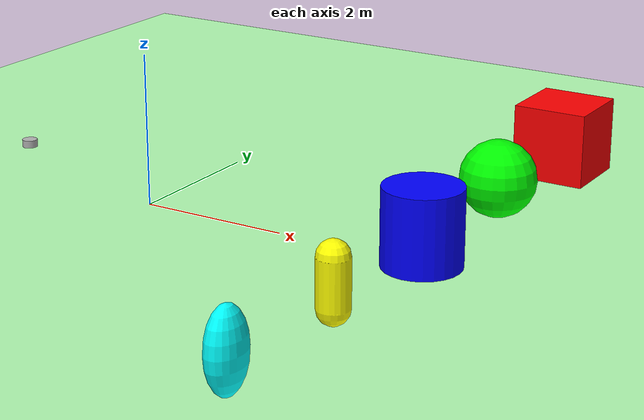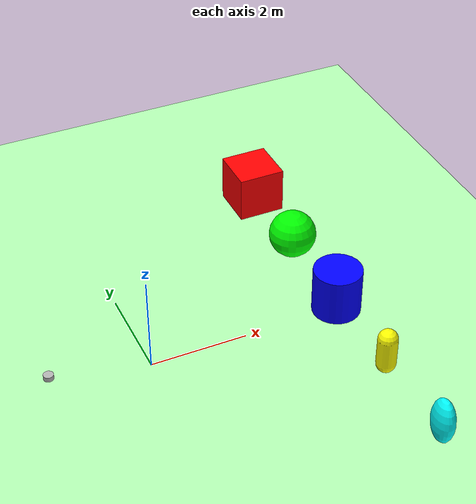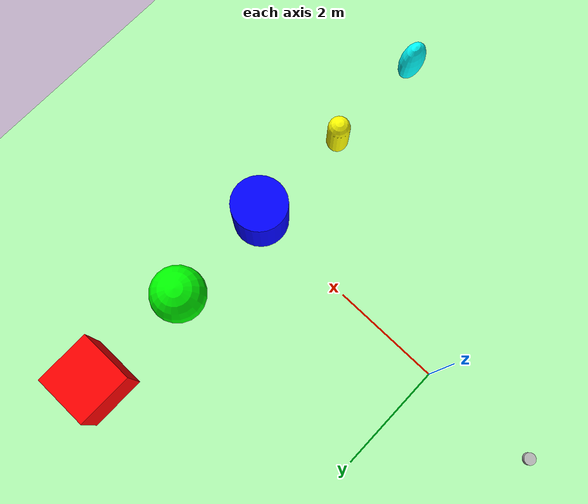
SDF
<sdf version="1.9">
 <world name="rgl_playground">
  <plugin name="rgl::RGLServerPluginManager" filename="RGLServerPluginManager">
   <do_ignore_entities_in_lidar_link>true</do_ignore_entities_in_lidar_link>
  </plugin>
  <physics name="1ms" type="ignored">
   <max_step_size>0.001</max_step_size>
   <real_time_factor>1</real_time_factor>
   <real_time_update_rate>1000</real_time_update_rate>
  </physics>
  <plugin name="gz::sim::systems::Physics" filename="ignition-gazebo-physics-system"/>
  <plugin name="gz::sim::systems::UserCommands" filename="ignition-gazebo-user-commands-system"/>
  <plugin name="gz::sim::systems::SceneBroadcaster" filename="ignition-gazebo-scene-broadcaster-system"/>
  <plugin name="gz::sim::systems::Contact" filename="ignition-gazebo-contact-system"/>
  <gravity>0 0 -9.8</gravity>
  <magnetic_field>6e-06 2.3e-05 -4.2e-05</magnetic_field>
  <atmosphere type="adiabatic"/>
  <scene><ambient>0.4 0.4 0.4 1</ambient><background>0.7 0.7 0.7 1</background><shadows>true</shadows></scene>
  <model name="ground_plane">
   <static>true</static>
   <link name="link">
    <collision name="collision">
     <geometry><plane><normal>0 0 1</normal><size>100 100</size></plane></geometry>
    </collision>
    <visual name="visual">
     <geometry><plane><normal>0 0 1</normal><size>100 100</size></plane></geometry>
     <material>
      <ambient>0.8 0.8 0.8 1</ambient>
      <diffuse>0.7 0.99 0.7 1</diffuse>
      <specular>0.8 0.8 0.8 1</specular>
     </material>
    </visual>
    <inertial>
     <mass>1</mass>
     <inertia><ixx>1</ixx><ixy>0</ixy><ixz>0</ixz><iyy>1</iyy><iyz>0</iyz><izz>1</izz></inertia>
    </inertial>
   </link>
  </model>
  <model name="RGLLidar">
   <pose>-2 0 0.5 0 -0 0</pose>
   <link name="lidar_link">
    <sensor name="RGLsensor" type="custom">
     <plugin filename="RGLServerPluginInstance" name="rgl::RGLServerPluginInstance">
      <range><min>0</min><max>100</max></range>
      <update_rate>10</update_rate>
      <update_on_paused_sim>false</update_on_paused_sim>
      <topic>rgl_lidar</topic>
      <frame>RGLLidar</frame>
      <pattern_preset>Alpha Prime</pattern_preset>
     </plugin>
    </sensor>
    <inertial>
     <inertia>
      <ixx>0.14580000000000001</ixx>
      <ixy>0</ixy>
      <ixz>0</ixz>
      <iyy>0.14580000000000001</iyy>
      <iyz>0</iyz>
      <izz>0.125</izz>
     </inertia>
     <mass>1</mass>
    </inertial>
    <collision name="lidar_collision">
     <geometry><cylinder><radius>0.1</radius><length>0.1</length></cylinder></geometry>
    </collision>
    <visual name="lidar_visual">
     <geometry><cylinder><radius>0.1</radius><length>0.1</length></cylinder></geometry>
     <material>
      <ambient>0.3 0.3 0.3 1</ambient>
      <diffuse>0.7 0.7 0.7 1</diffuse>
      <specular>1 1 1 1</specular>
     </material>
    </visual>
   </link>
   <static>true</static>
  </model>
  <model name="box">
   <pose>4 4 0.5 0 -0 0</pose>
   <link name="box_link">
    <inertial>
     <inertia><ixx>0.16666</ixx><ixy>0</ixy><ixz>0</ixz><iyy>0.16666</iyy><iyz>0</iyz><izz>0.16666</izz></inertia>
     <mass>1</mass>
    </inertial>
    <collision name="box_collision"><geometry><box><size>1 1 1</size></box></geometry></collision>
    <visual name="box_visual">
     <laser_retro>1</laser_retro>
     <geometry><box><size>1 1 1</size></box></geometry>
     <material><ambient>0.3 0.3 0.3 1</ambient><diffuse>1 0 0 1</diffuse><specular>1 1 1 1</specular></material>
    </visual>
   </link>
   <static>false</static>
  </model>
  <model name="sphere">
   <pose>4 2 0.5 0 -0 0</pose>
   <link name="sphere_link">
    <inertial>
     <inertia>
      <ixx>0.10000000000000001</ixx>
      <ixy>0</ixy>
      <ixz>0</ixz>
      <iyy>0.10000000000000001</iyy>
      <iyz>0</iyz>
      <izz>0.10000000000000001</izz>
     </inertia>
     <mass>1</mass>
    </inertial>
    <collision name="sphere_collision"><geometry><sphere><radius>0.5</radius></sphere></geometry></collision>
    <visual name="sphere_visual">
     <laser_retro>2</laser_retro>
     <geometry><sphere><radius>0.5</radius></sphere></geometry>
     <material><ambient>0.3 0.3 0.3 1</ambient><diffuse>0 1 0 1</diffuse><specular>1 1 1 1</specular></material>
    </visual>
   </link>
   <static>false</static>
  </model>
  <model name="cylinder">
   <pose>4 0 0.5 0 -0 0</pose>
   <link name="cylinder_link">
    <inertial>
     <inertia>
      <ixx>0.14580000000000001</ixx>
      <ixy>0</ixy>
      <ixz>0</ixz>
      <iyy>0.14580000000000001</iyy>
      <iyz>0</iyz>
      <izz>0.125</izz>
     </inertia>
     <mass>1</mass>
    </inertial>
    <collision name="cylinder_collision">
     <geometry><cylinder><radius>0.5</radius><length>1</length></cylinder></geometry>
    </collision>
    <visual name="cylinder_visual">
     <laser_retro>3</laser_retro>
     <geometry><cylinder><radius>0.5</radius><length>1</length></cylinder></geometry>
     <material><ambient>0.3 0.3 0.3 1</ambient><diffuse>0 0 1 1</diffuse><specular>1 1 1 1</specular></material>
    </visual>
   </link>
   <static>false</static>
  </model>
  <model name="capsule">
   <pose>4 -2 0.5 0 -0 0</pose>
   <link name="capsule_link">
    <inertial>
     <inertia>
      <ixx>0.074153999999999998</ixx>
      <ixy>0</ixy>
      <ixz>0</ixz>
      <iyy>0.074153999999999998</iyy>
      <iyz>0</iyz>
      <izz>0.018769000000000001</izz>
     </inertia>
     <mass>1</mass>
    </inertial>
    <collision name="capsule_collision">
     <geometry>
      <capsule><radius>0.20000000000000001</radius><length>0.59999999999999998</length></capsule>
     </geometry>
    </collision>
    <visual name="capsule_visual">
     <laser_retro>4</laser_retro>
     <geometry>
      <capsule><radius>0.20000000000000001</radius><length>0.59999999999999998</length></capsule>
     </geometry>
     <material><ambient>0.3 0.3 0.3 1</ambient><diffuse>1 1 0 1</diffuse><specular>1 1 1 1</specular></material>
    </visual>
   </link>
   <static>false</static>
  </model>
  <model name="ellipsoid">
   <pose>4 -4 0.5 0 -0 0</pose>
   <link name="ellipsoid_link">
    <inertial>
     <inertia>
      <ixx>0.068000000000000005</ixx>
      <ixy>0</ixy>
      <ixz>0</ixz>
      <iyy>0.058000000000000003</iyy>
      <iyz>0</iyz>
      <izz>0.025999999999999999</izz>
     </inertia>
     <mass>1</mass>
    </inertial>
    <collision name="ellipsoid_collision">
     <geometry><ellipsoid><radii>0.2 0.3 0.5</radii></ellipsoid></geometry>
    </collision>
    <visual name="ellipsoid_visual">
     <laser_retro>5</laser_retro>
     <geometry><ellipsoid><radii>0.2 0.3 0.5</radii></ellipsoid></geometry>
     <material><ambient>0.3 0.3 0.3 1</ambient><diffuse>0 1 1 1</diffuse><specular>1 1 1 1</specular></material>
    </visual>
   </link>
   <static>false</static>
  </model>
  <light name="sun" type="directional">
   <pose>0 0 10 0 -0 0</pose>
   <intensity>1</intensity>
   <direction>-0.5 0.1 -0.9</direction>
   <diffuse>0.8 0.8 0.8 1</diffuse>
   <specular>0.2 0.2 0.2 1</specular>
   <attenuation>
    <range>1000</range>
    <linear>0.01</linear>
    <constant>0.90000000000000002</constant>
    <quadratic>0.001</quadratic>
   </attenuation>
   <spot><inner_angle>0</inner_angle><outer_angle>0</outer_angle><falloff>0</falloff></spot>
  </light>
 </world>
</sdf>
